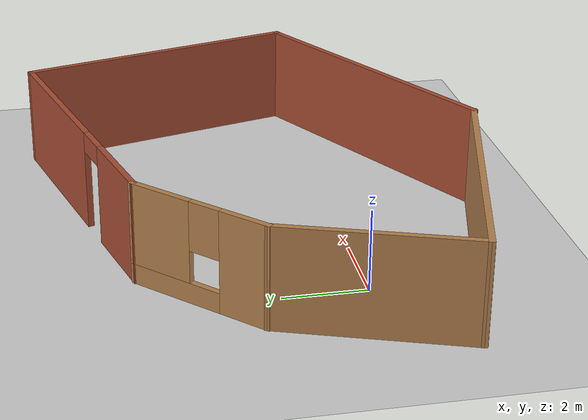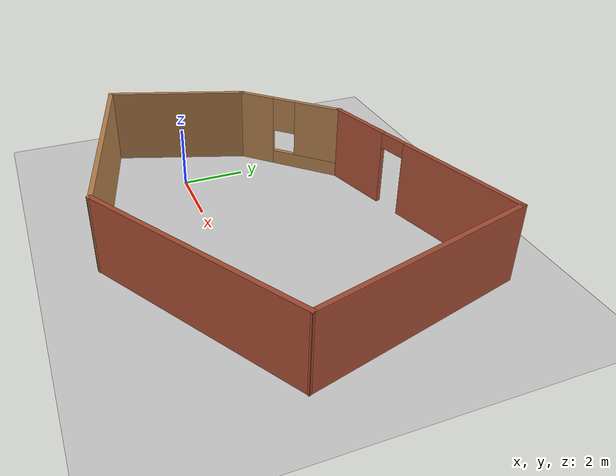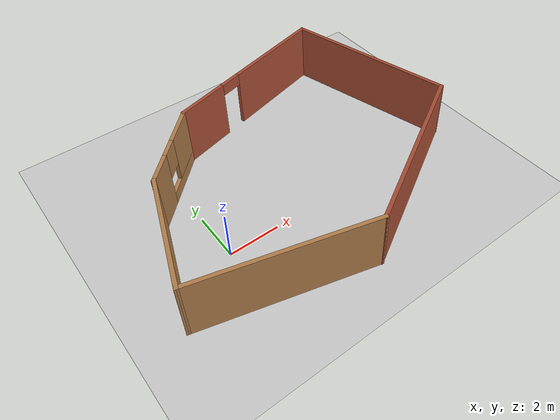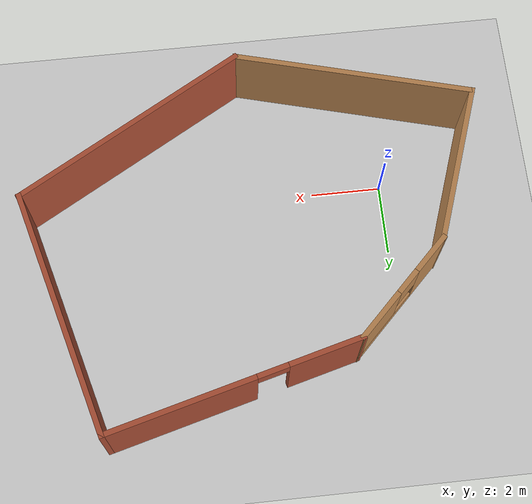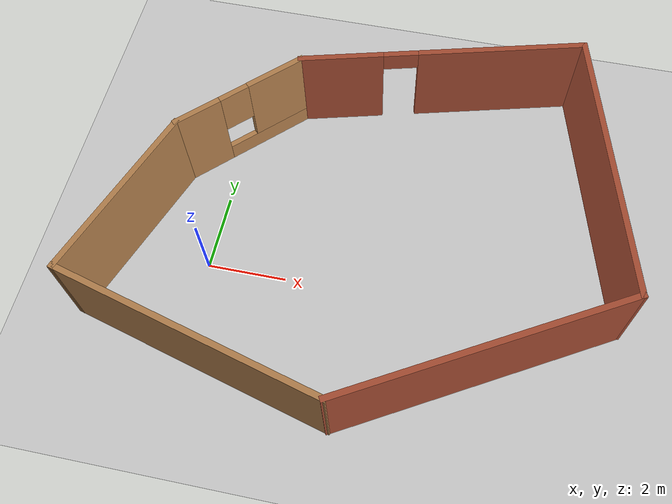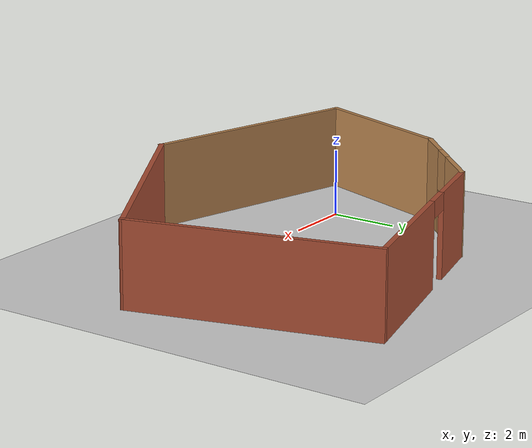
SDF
<sdf version="1.7">
 <world name="default">
  <light name="sun" type="directional">
   <pose>0 0 10 0 0 0</pose>
   <diffuse>1 1 1 1</diffuse>
   <specular>0.5 0.5 0.5 1</specular>
   <attenuation>
    <range>1000</range>
    <constant>0.5</constant>
    <linear>0.001</linear>
    <quadratic>0.0001</quadratic>
   </attenuation>
   <direction>-0.2 -0.2 -1</direction>
  </light>
  <model name="ground_plane">
   <static>1</static>
   <link name="link">
    <collision name="collision">
     <geometry><plane><normal>0 0 1</normal><size>100 100</size></plane></geometry>
     <surface>
      <contact><collide_bitmask>65535</collide_bitmask></contact>
      <friction><ode><mu>100</mu><mu2>50</mu2></ode></friction>
     </surface>
    </collision>
    <visual name="visual">
     <cast_shadows>0</cast_shadows>
     <geometry><plane><normal>0 0 1</normal><size>100 100</size></plane></geometry>
     <material>
      <script><uri>file://media/materials/scripts/gazebo.material</uri><name>Gazebo/Grey</name></script>
     </material>
    </visual>
   </link>
  </model>
  <gravity>0 0 -9.8</gravity>
  <magnetic_field>6e-06 2.3e-05 -4.2e-05</magnetic_field>
  <atmosphere type="adiabatic"/>
  <physics type="ode">
   <max_step_size>0.001</max_step_size>
   <real_time_factor>1</real_time_factor>
   <real_time_update_rate>1000</real_time_update_rate>
  </physics>
  <scene><ambient>0.4 0.4 0.4 1</ambient><background>0.7 0.7 0.7 1</background><shadows>1</shadows></scene>
  <audio><device>default</device></audio>
  <spherical_coordinates>
   <surface_model>EARTH_WGS84</surface_model>
   <latitude_deg>0</latitude_deg>
   <longitude_deg>0</longitude_deg>
   <elevation>0</elevation>
   <heading_deg>0</heading_deg>
  </spherical_coordinates>
  <model name="my_building">
   <pose>3.79784 1.70267 0 0 -0 0</pose>
   <link name="Wall_11">
    <pose>-3.72252 2.09672 0 0 -0 0.785398</pose>
    <visual name="Wall_11_Visual_0">
     <pose>-1.22539 0 1.25 0 -0 0</pose>
     <geometry><box><size>1.29922 0.15 2.5</size></box></geometry>
     <material>
      <script><uri>file://media/materials/scripts/gazebo.material</uri><name>Gazebo/Wood</name></script>
      <ambient>1 1 1 1</ambient>
     </material>
     <meta><layer>0</layer></meta>
    </visual>
    <collision name="Wall_11_Collision_0">
     <geometry><box><size>1.29922 0.15 2.5</size></box></geometry>
     <pose>-1.22539 0 1.25 0 -0 0</pose>
    </collision>
    <visual name="Wall_11_Visual_1">
     <pose>0.649612 0 0.25 0 -0 0</pose>
     <geometry><box><size>2.45078 0.15 0.5</size></box></geometry>
     <material>
      <script><uri>file://media/materials/scripts/gazebo.material</uri><name>Gazebo/Wood</name></script>
      <ambient>1 1 1 1</ambient>
     </material>
     <meta><layer>0</layer></meta>
    </visual>
    <collision name="Wall_11_Collision_1">
     <geometry><box><size>2.45078 0.15 0.5</size></box></geometry>
     <pose>0.649612 0 0.25 0 -0 0</pose>
    </collision>
    <visual name="Wall_11_Visual_2">
     <pose>1.04961 0 1.5 0 -0 0</pose>
     <geometry><box><size>1.65078 0.15 2</size></box></geometry>
     <material>
      <script><uri>file://media/materials/scripts/gazebo.material</uri><name>Gazebo/Wood</name></script>
      <ambient>1 1 1 1</ambient>
     </material>
     <meta><layer>0</layer></meta>
    </visual>
    <collision name="Wall_11_Collision_2">
     <geometry><box><size>1.65078 0.15 2</size></box></geometry>
     <pose>1.04961 0 1.5 0 -0 0</pose>
    </collision>
    <visual name="Wall_11_Visual_3">
     <pose>-0.175776 0 1.9 0 -0 0</pose>
     <geometry><box><size>0.8 0.15 1.2</size></box></geometry>
     <material>
      <script><uri>file://media/materials/scripts/gazebo.material</uri><name>Gazebo/Wood</name></script>
      <ambient>1 1 1 1</ambient>
     </material>
     <meta><layer>0</layer></meta>
    </visual>
    <collision name="Wall_11_Collision_3">
     <geometry><box><size>0.8 0.15 1.2</size></box></geometry>
     <pose>-0.175776 0 1.9 0 -0 0</pose>
    </collision>
   </link>
   <link name="Wall_12">
    <pose>1.10006 4.32067 0 0 -0 0.261799</pose>
    <visual name="Wall_12_Visual_0">
     <pose>-2.64724 0 1.25 0 -0 0</pose>
     <geometry><box><size>2.20551 0.15 2.5</size></box></geometry>
     <material>
      <script><uri>file://media/materials/scripts/gazebo.material</uri><name>Gazebo/Bricks</name></script>
      <ambient>1 1 1 1</ambient>
     </material>
     <meta><layer>0</layer></meta>
    </visual>
    <collision name="Wall_12_Collision_0">
     <geometry><box><size>2.20551 0.15 2.5</size></box></geometry>
     <pose>-2.64724 0 1.25 0 -0 0</pose>
    </collision>
    <visual name="Wall_12_Visual_1">
     <pose>1.55276 0 1.25 0 -0 0</pose>
     <geometry><box><size>4.39449 0.15 2.5</size></box></geometry>
     <material>
      <script><uri>file://media/materials/scripts/gazebo.material</uri><name>Gazebo/Bricks</name></script>
      <ambient>1 1 1 1</ambient>
     </material>
     <meta><layer>0</layer></meta>
    </visual>
    <collision name="Wall_12_Collision_1">
     <geometry><box><size>4.39449 0.15 2.5</size></box></geometry>
     <pose>1.55276 0 1.25 0 -0 0</pose>
    </collision>
    <visual name="Wall_12_Visual_2">
     <pose>-1.09449 0 2.25 0 -0 0</pose>
     <geometry><box><size>0.9 0.15 0.5</size></box></geometry>
     <material>
      <script><uri>file://media/materials/scripts/gazebo.material</uri><name>Gazebo/Bricks</name></script>
      <ambient>1 1 1 1</ambient>
     </material>
     <meta><layer>0</layer></meta>
    </visual>
    <collision name="Wall_12_Collision_2">
     <geometry><box><size>0.9 0.15 0.5</size></box></geometry>
     <pose>-1.09449 0 2.25 0 -0 0</pose>
    </collision>
   </link>
   <link name="Wall_13">
    <collision name="Wall_13_Collision">
     <geometry><box><size>7.25 0.15 2.5</size></box></geometry>
     <pose>0 0 1.25 0 -0 0</pose>
    </collision>
    <visual name="Wall_13_Visual">
     <pose>0 0 1.25 0 -0 0</pose>
     <geometry><box><size>7.25 0.15 2.5</size></box></geometry>
     <material>
      <script><uri>file://media/materials/scripts/gazebo.material</uri><name>Gazebo/Bricks</name></script>
      <ambient>1 1 1 1</ambient>
     </material>
     <meta><layer>0</layer></meta>
    </visual>
    <pose>5.56864 1.8428 0 0 -0 -1.309</pose>
   </link>
   <link name="Wall_14">
    <collision name="Wall_14_Collision">
     <geometry><box><size>7.5 0.15 2.5</size></box></geometry>
     <pose>0 0 1.25 0 -0 0</pose>
    </collision>
    <visual name="Wall_14_Visual">
     <pose>0 0 1.25 0 -0 0</pose>
     <geometry><box><size>7.5 0.15 2.5</size></box></geometry>
     <material>
      <script><uri>file://media/materials/scripts/gazebo.material</uri><name>Gazebo/Bricks</name></script>
      <ambient>1 1 1 1</ambient>
     </material>
     <meta><layer>0</layer></meta>
    </visual>
    <pose>3.3048 -3.42374 0 0 -0 -2.61799</pose>
   </link>
   <link name="Wall_15">
    <collision name="Wall_15_Collision">
     <geometry><box><size>7 0.15 2.5</size></box></geometry>
     <pose>0 0 1.25 0 -0 0</pose>
    </collision>
    <visual name="Wall_15_Visual">
     <pose>0 0 1.25 0 -0 0</pose>
     <geometry><box><size>7 0.15 2.5</size></box></geometry>
     <material>
      <script><uri>file://media/materials/scripts/gazebo.material</uri><name>Gazebo/Wood</name></script>
      <ambient>1 1 1 1</ambient>
     </material>
     <meta><layer>0</layer></meta>
    </visual>
    <pose>-3.18614 -4.37478 0 0 -0 2.87979</pose>
   </link>
   <link name="Wall_16">
    <collision name="Wall_16_Collision">
     <geometry><box><size>4.71541 0.15 2.5</size></box></geometry>
     <pose>0 0 1.25 0 -0 0</pose>
    </collision>
    <visual name="Wall_16_Visual">
     <pose>0 0 1.25 0 -0 0</pose>
     <geometry><box><size>4.71541 0.15 2.5</size></box></geometry>
     <material>
      <script><uri>file://media/materials/scripts/gazebo.material</uri><name>Gazebo/Wood</name></script>
      <ambient>1 1 1 1</ambient>
     </material>
     <meta><layer>0</layer></meta>
    </visual>
    <pose>-5.74487 -1.3322 0 0 -0 1.23622</pose>
   </link>
   <static>1</static>
  </model>
 </world>
</sdf>
